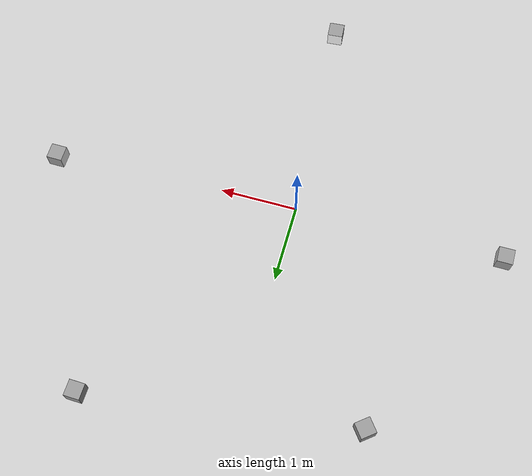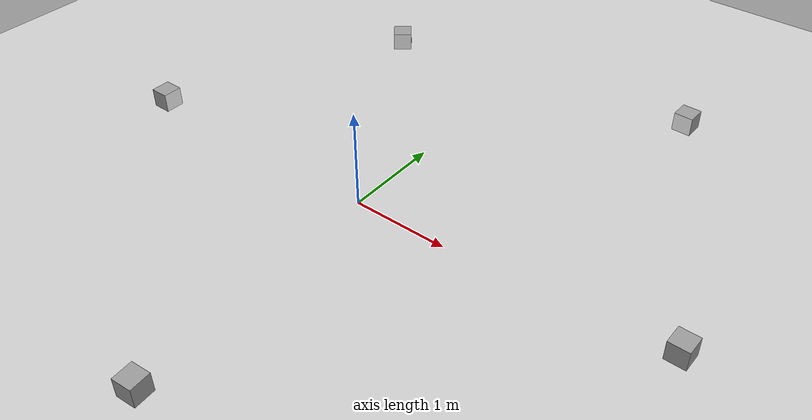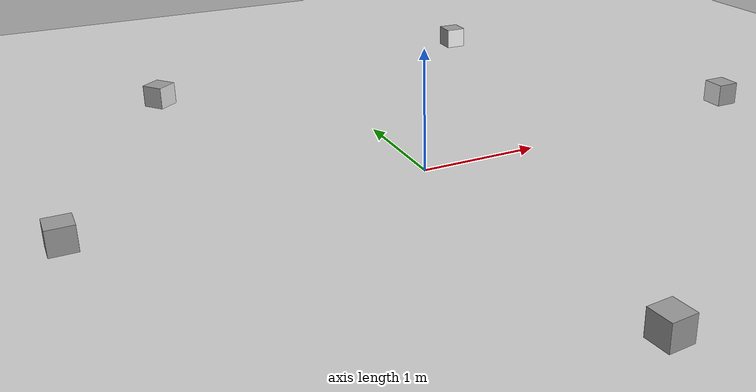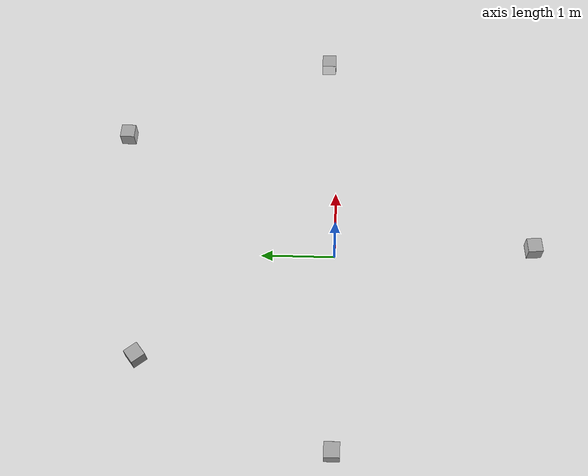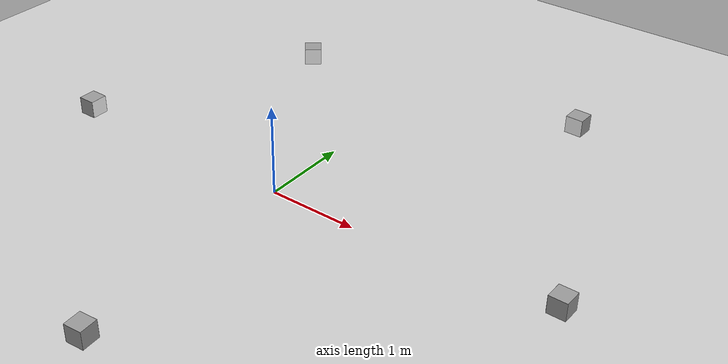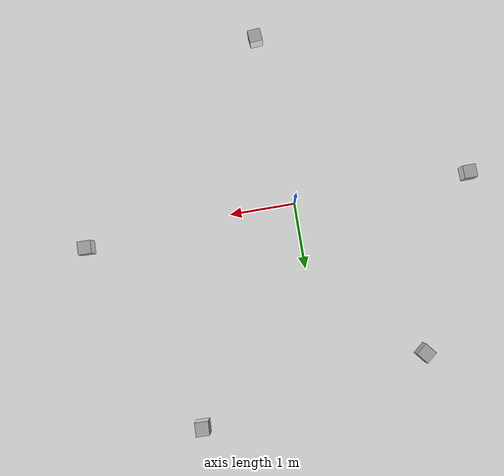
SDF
<sdf version="1.7">
 <world name="default">
  <light name="sun" type="directional">
   <pose>0 0 10 0 -0 0</pose>
   <diffuse>0.8 0.8 0.8 1</diffuse>
   <specular>0.2 0.2 0.2 1</specular>
   <attenuation>
    <range>1000</range>
    <constant>0.9</constant>
    <linear>0.01</linear>
    <quadratic>0.001</quadratic>
   </attenuation>
   <direction>-0.5 0.1 -0.9</direction>
   <spot><inner_angle>0</inner_angle><outer_angle>0</outer_angle><falloff>0</falloff></spot>
  </light>
  <model name="ground_plane">
   <static>1</static>
   <link name="link">
    <collision name="collision">
     <geometry><plane><normal>0 0 1</normal><size>100 100</size></plane></geometry>
     <surface>
      <contact><collide_bitmask>65535</collide_bitmask></contact>
      <friction><ode><mu>100</mu><mu2>50</mu2></ode></friction>
     </surface>
    </collision>
    <visual name="visual">
     <cast_shadows>0</cast_shadows>
     <geometry><plane><normal>0 0 1</normal><size>100 100</size></plane></geometry>
     <material>
      <script><uri>file://media/materials/scripts/gazebo.material</uri><name>Gazebo/Grey</name></script>
     </material>
    </visual>
   </link>
  </model>
  <gravity>0 0 -9.8</gravity>
  <magnetic_field>6e-06 2.3e-05 -4.2e-05</magnetic_field>
  <atmosphere type="adiabatic"/>
  <physics type="ode">
   <max_step_size>0.001</max_step_size>
   <real_time_factor>1</real_time_factor>
   <real_time_update_rate>1000</real_time_update_rate>
  </physics>
  <scene><ambient>0.4 0.4 0.4 1</ambient><background>0.7 0.7 0.7 1</background><shadows>1</shadows></scene>
  <spherical_coordinates>
   <surface_model>EARTH_WGS84</surface_model>
   <latitude_deg>0</latitude_deg>
   <longitude_deg>0</longitude_deg>
   <elevation>0</elevation>
   <heading_deg>0</heading_deg>
  </spherical_coordinates>
  <model name="marker37_box">
   <link name="marker">
    <inertial>
     <mass>0.1</mass>
     <inertia><ixx>0</ixx><ixy>0</ixy><ixz>0</ixz><iyy>0</iyy><iyz>0</iyz><izz>0</izz></inertia>
    </inertial>
    <self_collide>1</self_collide>
    <pose>-0.76428 -0.101106 0.120004 -0.015494 1.56996 -0.015507</pose>
    <visual name="visual">
     <geometry><box><size>0.2 0.2 0.001</size></box></geometry>
     <material>
      <script>
       <uri>model://marker37/material/scripts</uri>
       <uri>model://marker37/material/textures</uri>
       <name>Aruco/marker37</name>
      </script>
      <shader type="pixel"><normal_map>__default__</normal_map></shader>
      <emissive>0 0 0 1</emissive>
      <ambient>1 1 1 1</ambient>
      <diffuse>1 1 1 1</diffuse>
      <specular>0 0 0 1</specular>
     </material>
    </visual>
    <collision name="collision">
     <geometry><box><size>0.2 0.2 0.02</size></box></geometry>
     <surface>
      <friction>
       <ode><mu>1</mu><mu2>1</mu2><fdir1>0 0 0</fdir1><slip1>0</slip1><slip2>0</slip2></ode>
       <torsional>
        <coefficient>1</coefficient>
        <patch_radius>0</patch_radius>
        <surface_radius>0</surface_radius>
        <use_patch_radius>1</use_patch_radius>
        <ode><slip>0</slip></ode>
       </torsional>
      </friction>
      <bounce><restitution_coefficient>0</restitution_coefficient><threshold>1e+06</threshold></bounce>
      <contact>
       <collide_without_contact>0</collide_without_contact>
       <collide_without_contact_bitmask>1</collide_without_contact_bitmask>
       <collide_bitmask>1</collide_bitmask>
       <ode>
        <soft_cfm>0</soft_cfm>
        <soft_erp>0.2</soft_erp>
        <kp>1e+13</kp>
        <kd>1</kd>
        <max_vel>0.01</max_vel>
        <min_depth>0</min_depth>
       </ode>
       <bullet>
        <split_impulse>1</split_impulse>
        <split_impulse_penetration_threshold>-0.01</split_impulse_penetration_threshold>
        <soft_cfm>0</soft_cfm>
        <soft_erp>0.2</soft_erp>
        <kp>1e+13</kp>
        <kd>1</kd>
       </bullet>
      </contact>
     </surface>
    </collision>
   </link>
   <link name="link_1">
    <inertial>
     <mass>1</mass>
     <inertia>
      <ixx>0.166667</ixx>
      <ixy>0</ixy>
      <ixz>0</ixz>
      <iyy>0.166667</iyy>
      <iyz>0</iyz>
      <izz>0.166667</izz>
     </inertia>
    </inertial>
    <pose>-0.86428 -0.101106 0.12 -1.3e-05 -4.2e-05 -0</pose>
    <visual name="visual">
     <geometry><box><size>0.2 0.2 0.2</size></box></geometry>
     <material>
      <lighting>1</lighting>
      <script><uri>file://media/materials/scripts/gazebo.material</uri><name>Gazebo/Grey</name></script>
      <shader type="pixel"><normal_map>__default__</normal_map></shader>
      <emissive>0 0 0 1</emissive>
      <ambient>0.3 0.3 0.3 1</ambient>
      <diffuse>0.7 0.7 0.7 1</diffuse>
      <specular>0.01 0.01 0.01 1</specular>
     </material>
    </visual>
    <collision name="collision">
     <geometry><box><size>0.2 0.2 0.2</size></box></geometry>
     <surface>
      <friction>
       <ode><mu>1</mu><mu2>1</mu2><fdir1>0 0 0</fdir1><slip1>0</slip1><slip2>0</slip2></ode>
       <torsional>
        <coefficient>1</coefficient>
        <patch_radius>0</patch_radius>
        <surface_radius>0</surface_radius>
        <use_patch_radius>1</use_patch_radius>
        <ode><slip>0</slip></ode>
       </torsional>
      </friction>
      <bounce><restitution_coefficient>0</restitution_coefficient><threshold>1e+06</threshold></bounce>
      <contact>
       <collide_without_contact>0</collide_without_contact>
       <collide_without_contact_bitmask>1</collide_without_contact_bitmask>
       <collide_bitmask>1</collide_bitmask>
       <ode>
        <soft_cfm>0</soft_cfm>
        <soft_erp>0.2</soft_erp>
        <kp>1e+13</kp>
        <kd>1</kd>
        <max_vel>0.01</max_vel>
        <min_depth>0</min_depth>
       </ode>
       <bullet>
        <split_impulse>1</split_impulse>
        <split_impulse_penetration_threshold>-0.01</split_impulse_penetration_threshold>
        <soft_cfm>0</soft_cfm>
        <soft_erp>0.2</soft_erp>
        <kp>1e+13</kp>
        <kd>1</kd>
       </bullet>
      </contact>
     </surface>
    </collision>
   </link>
   <joint name="link_1_JOINT_3" type="fixed">
    <parent>link_1</parent>
    <child>marker</child>
    <physics>
     <ode><limit><cfm>0</cfm><erp>0.2</erp></limit><suspension><cfm>0</cfm><erp>0.2</erp></suspension></ode>
    </physics>
   </joint>
   <static>0</static>
   <pose>-1.84004 0.079703 -0.020009 8e-06 1.8e-05 0.000133</pose>
  </model>
  <model name="marker24_box">
   <link name="marker">
    <inertial>
     <mass>0.1</mass>
     <inertia><ixx>0</ixx><ixy>0</ixy><ixz>0</ixz><iyy>0</iyy><iyz>0</iyz><izz>0</izz></inertia>
    </inertial>
    <self_collide>1</self_collide>
    <pose>-0.76428 -0.101106 0.120004 -0.015494 1.56996 -0.015507</pose>
    <visual name="visual">
     <geometry><box><size>0.2 0.2 0.001</size></box></geometry>
     <material>
      <script>
       <uri>model://marker24/material/scripts</uri>
       <uri>model://marker24/material/textures</uri>
       <name>Aruco/marker24</name>
      </script>
      <shader type="pixel"><normal_map>__default__</normal_map></shader>
      <emissive>0 0 0 1</emissive>
      <ambient>1 1 1 1</ambient>
      <diffuse>1 1 1 1</diffuse>
      <specular>0 0 0 1</specular>
     </material>
    </visual>
    <collision name="collision">
     <geometry><box><size>0.2 0.2 0.02</size></box></geometry>
     <surface>
      <friction>
       <ode><mu>1</mu><mu2>1</mu2><fdir1>0 0 0</fdir1><slip1>0</slip1><slip2>0</slip2></ode>
       <torsional>
        <coefficient>1</coefficient>
        <patch_radius>0</patch_radius>
        <surface_radius>0</surface_radius>
        <use_patch_radius>1</use_patch_radius>
        <ode><slip>0</slip></ode>
       </torsional>
      </friction>
      <bounce><restitution_coefficient>0</restitution_coefficient><threshold>1e+06</threshold></bounce>
      <contact>
       <collide_without_contact>0</collide_without_contact>
       <collide_without_contact_bitmask>1</collide_without_contact_bitmask>
       <collide_bitmask>1</collide_bitmask>
       <ode>
        <soft_cfm>0</soft_cfm>
        <soft_erp>0.2</soft_erp>
        <kp>1e+13</kp>
        <kd>1</kd>
        <max_vel>0.01</max_vel>
        <min_depth>0</min_depth>
       </ode>
       <bullet>
        <split_impulse>1</split_impulse>
        <split_impulse_penetration_threshold>-0.01</split_impulse_penetration_threshold>
        <soft_cfm>0</soft_cfm>
        <soft_erp>0.2</soft_erp>
        <kp>1e+13</kp>
        <kd>1</kd>
       </bullet>
      </contact>
     </surface>
    </collision>
   </link>
   <link name="link_1">
    <inertial>
     <mass>1</mass>
     <inertia>
      <ixx>0.166667</ixx>
      <ixy>0</ixy>
      <ixz>0</ixz>
      <iyy>0.166667</iyy>
      <iyz>0</iyz>
      <izz>0.166667</izz>
     </inertia>
    </inertial>
    <pose>-0.86428 -0.101106 0.12 -1.3e-05 -4.2e-05 -0</pose>
    <visual name="visual">
     <geometry><box><size>0.2 0.2 0.2</size></box></geometry>
     <material>
      <lighting>1</lighting>
      <script><uri>file://media/materials/scripts/gazebo.material</uri><name>Gazebo/Grey</name></script>
      <shader type="pixel"><normal_map>__default__</normal_map></shader>
      <emissive>0 0 0 1</emissive>
      <ambient>0.3 0.3 0.3 1</ambient>
      <diffuse>0.7 0.7 0.7 1</diffuse>
      <specular>0.01 0.01 0.01 1</specular>
     </material>
    </visual>
    <collision name="collision">
     <geometry><box><size>0.2 0.2 0.2</size></box></geometry>
     <surface>
      <friction>
       <ode><mu>1</mu><mu2>1</mu2><fdir1>0 0 0</fdir1><slip1>0</slip1><slip2>0</slip2></ode>
       <torsional>
        <coefficient>1</coefficient>
        <patch_radius>0</patch_radius>
        <surface_radius>0</surface_radius>
        <use_patch_radius>1</use_patch_radius>
        <ode><slip>0</slip></ode>
       </torsional>
      </friction>
      <bounce><restitution_coefficient>0</restitution_coefficient><threshold>1e+06</threshold></bounce>
      <contact>
       <collide_without_contact>0</collide_without_contact>
       <collide_without_contact_bitmask>1</collide_without_contact_bitmask>
       <collide_bitmask>1</collide_bitmask>
       <ode>
        <soft_cfm>0</soft_cfm>
        <soft_erp>0.2</soft_erp>
        <kp>1e+13</kp>
        <kd>1</kd>
        <max_vel>0.01</max_vel>
        <min_depth>0</min_depth>
       </ode>
       <bullet>
        <split_impulse>1</split_impulse>
        <split_impulse_penetration_threshold>-0.01</split_impulse_penetration_threshold>
        <soft_cfm>0</soft_cfm>
        <soft_erp>0.2</soft_erp>
        <kp>1e+13</kp>
        <kd>1</kd>
       </bullet>
      </contact>
     </surface>
    </collision>
   </link>
   <joint name="link_1_JOINT_3" type="fixed">
    <parent>link_1</parent>
    <child>marker</child>
    <physics>
     <ode><limit><cfm>0</cfm><erp>0.2</erp></limit><suspension><cfm>0</cfm><erp>0.2</erp></suspension></ode>
    </physics>
   </joint>
   <static>0</static>
   <pose>-0.006922 -1.84775 -0.020009 1.4e-05 1.9e-05 1.64861</pose>
  </model>
  <model name="marker27_box">
   <link name="marker">
    <inertial>
     <mass>0.1</mass>
     <inertia><ixx>0</ixx><ixy>0</ixy><ixz>0</ixz><iyy>0</iyy><iyz>0</iyz><izz>0</izz></inertia>
    </inertial>
    <self_collide>1</self_collide>
    <pose>-0.76428 -0.101106 0.120004 -0.015494 1.56996 -0.015507</pose>
    <visual name="visual">
     <geometry><box><size>0.2 0.2 0.001</size></box></geometry>
     <material>
      <script>
       <uri>model://marker27/material/scripts</uri>
       <uri>model://marker27/material/textures</uri>
       <name>Aruco/marker27</name>
      </script>
      <shader type="pixel"><normal_map>__default__</normal_map></shader>
      <emissive>0 0 0 1</emissive>
      <ambient>1 1 1 1</ambient>
      <diffuse>1 1 1 1</diffuse>
      <specular>0 0 0 1</specular>
     </material>
    </visual>
    <collision name="collision">
     <geometry><box><size>0.2 0.2 0.02</size></box></geometry>
     <surface>
      <friction>
       <ode><mu>1</mu><mu2>1</mu2><fdir1>0 0 0</fdir1><slip1>0</slip1><slip2>0</slip2></ode>
       <torsional>
        <coefficient>1</coefficient>
        <patch_radius>0</patch_radius>
        <surface_radius>0</surface_radius>
        <use_patch_radius>1</use_patch_radius>
        <ode><slip>0</slip></ode>
       </torsional>
      </friction>
      <bounce><restitution_coefficient>0</restitution_coefficient><threshold>1e+06</threshold></bounce>
      <contact>
       <collide_without_contact>0</collide_without_contact>
       <collide_without_contact_bitmask>1</collide_without_contact_bitmask>
       <collide_bitmask>1</collide_bitmask>
       <ode>
        <soft_cfm>0</soft_cfm>
        <soft_erp>0.2</soft_erp>
        <kp>1e+13</kp>
        <kd>1</kd>
        <max_vel>0.01</max_vel>
        <min_depth>0</min_depth>
       </ode>
       <bullet>
        <split_impulse>1</split_impulse>
        <split_impulse_penetration_threshold>-0.01</split_impulse_penetration_threshold>
        <soft_cfm>0</soft_cfm>
        <soft_erp>0.2</soft_erp>
        <kp>1e+13</kp>
        <kd>1</kd>
       </bullet>
      </contact>
     </surface>
    </collision>
   </link>
   <link name="link_1">
    <inertial>
     <mass>1</mass>
     <inertia>
      <ixx>0.166667</ixx>
      <ixy>0</ixy>
      <ixz>0</ixz>
      <iyy>0.166667</iyy>
      <iyz>0</iyz>
      <izz>0.166667</izz>
     </inertia>
    </inertial>
    <pose>-0.86428 -0.101106 0.12 -1.3e-05 -4.2e-05 -0</pose>
    <visual name="visual">
     <geometry><box><size>0.2 0.2 0.2</size></box></geometry>
     <material>
      <lighting>1</lighting>
      <script><uri>file://media/materials/scripts/gazebo.material</uri><name>Gazebo/Grey</name></script>
      <shader type="pixel"><normal_map>__default__</normal_map></shader>
      <emissive>0 0 0 1</emissive>
      <ambient>0.3 0.3 0.3 1</ambient>
      <diffuse>0.7 0.7 0.7 1</diffuse>
      <specular>0.01 0.01 0.01 1</specular>
     </material>
    </visual>
    <collision name="collision">
     <geometry><box><size>0.2 0.2 0.2</size></box></geometry>
     <surface>
      <friction>
       <ode><mu>1</mu><mu2>1</mu2><fdir1>0 0 0</fdir1><slip1>0</slip1><slip2>0</slip2></ode>
       <torsional>
        <coefficient>1</coefficient>
        <patch_radius>0</patch_radius>
        <surface_radius>0</surface_radius>
        <use_patch_radius>1</use_patch_radius>
        <ode><slip>0</slip></ode>
       </torsional>
      </friction>
      <bounce><restitution_coefficient>0</restitution_coefficient><threshold>1e+06</threshold></bounce>
      <contact>
       <collide_without_contact>0</collide_without_contact>
       <collide_without_contact_bitmask>1</collide_without_contact_bitmask>
       <collide_bitmask>1</collide_bitmask>
       <ode>
        <soft_cfm>0</soft_cfm>
        <soft_erp>0.2</soft_erp>
        <kp>1e+13</kp>
        <kd>1</kd>
        <max_vel>0.01</max_vel>
        <min_depth>0</min_depth>
       </ode>
       <bullet>
        <split_impulse>1</split_impulse>
        <split_impulse_penetration_threshold>-0.01</split_impulse_penetration_threshold>
        <soft_cfm>0</soft_cfm>
        <soft_erp>0.2</soft_erp>
        <kp>1e+13</kp>
        <kd>1</kd>
       </bullet>
      </contact>
     </surface>
    </collision>
   </link>
   <joint name="link_1_JOINT_3" type="fixed">
    <parent>link_1</parent>
    <child>marker</child>
    <physics>
     <ode><limit><cfm>0</cfm><erp>0.2</erp></limit><suspension><cfm>0</cfm><erp>0.2</erp></suspension></ode>
    </physics>
   </joint>
   <static>0</static>
   <pose>2.34391 0.052849 -0.020008 9e-06 1.8e-05 3.13215</pose>
  </model>
  <model name="marker39_box">
   <link name="marker">
    <inertial>
     <mass>0.1</mass>
     <inertia><ixx>0</ixx><ixy>0</ixy><ixz>0</ixz><iyy>0</iyy><iyz>0</iyz><izz>0</izz></inertia>
    </inertial>
    <self_collide>1</self_collide>
    <pose>-0.76428 -0.101106 0.120004 -0.015494 1.56996 -0.015507</pose>
    <visual name="visual">
     <geometry><box><size>0.2 0.2 0.001</size></box></geometry>
     <material>
      <script>
       <uri>model://marker39/material/scripts</uri>
       <uri>model://marker39/material/textures</uri>
       <name>Aruco/marker39</name>
      </script>
      <shader type="pixel"><normal_map>__default__</normal_map></shader>
      <emissive>0 0 0 1</emissive>
      <ambient>1 1 1 1</ambient>
      <diffuse>1 1 1 1</diffuse>
      <specular>0 0 0 1</specular>
     </material>
    </visual>
    <collision name="collision">
     <geometry><box><size>0.2 0.2 0.02</size></box></geometry>
     <surface>
      <friction>
       <ode><mu>1</mu><mu2>1</mu2><fdir1>0 0 0</fdir1><slip1>0</slip1><slip2>0</slip2></ode>
       <torsional>
        <coefficient>1</coefficient>
        <patch_radius>0</patch_radius>
        <surface_radius>0</surface_radius>
        <use_patch_radius>1</use_patch_radius>
        <ode><slip>0</slip></ode>
       </torsional>
      </friction>
      <bounce><restitution_coefficient>0</restitution_coefficient><threshold>1e+06</threshold></bounce>
      <contact>
       <collide_without_contact>0</collide_without_contact>
       <collide_without_contact_bitmask>1</collide_without_contact_bitmask>
       <collide_bitmask>1</collide_bitmask>
       <ode>
        <soft_cfm>0</soft_cfm>
        <soft_erp>0.2</soft_erp>
        <kp>1e+13</kp>
        <kd>1</kd>
        <max_vel>0.01</max_vel>
        <min_depth>0</min_depth>
       </ode>
       <bullet>
        <split_impulse>1</split_impulse>
        <split_impulse_penetration_threshold>-0.01</split_impulse_penetration_threshold>
        <soft_cfm>0</soft_cfm>
        <soft_erp>0.2</soft_erp>
        <kp>1e+13</kp>
        <kd>1</kd>
       </bullet>
      </contact>
     </surface>
    </collision>
   </link>
   <link name="link_1">
    <inertial>
     <mass>1</mass>
     <inertia>
      <ixx>0.166667</ixx>
      <ixy>0</ixy>
      <ixz>0</ixz>
      <iyy>0.166667</iyy>
      <iyz>0</iyz>
      <izz>0.166667</izz>
     </inertia>
    </inertial>
    <pose>-0.86428 -0.101106 0.12 -1.3e-05 -4.2e-05 -0</pose>
    <visual name="visual">
     <geometry><box><size>0.2 0.2 0.2</size></box></geometry>
     <material>
      <lighting>1</lighting>
      <script><uri>file://media/materials/scripts/gazebo.material</uri><name>Gazebo/Grey</name></script>
      <shader type="pixel"><normal_map>__default__</normal_map></shader>
      <emissive>0 0 0 1</emissive>
      <ambient>0.3 0.3 0.3 1</ambient>
      <diffuse>0.7 0.7 0.7 1</diffuse>
      <specular>0.01 0.01 0.01 1</specular>
     </material>
    </visual>
    <collision name="collision">
     <geometry><box><size>0.2 0.2 0.2</size></box></geometry>
     <surface>
      <friction>
       <ode><mu>1</mu><mu2>1</mu2><fdir1>0 0 0</fdir1><slip1>0</slip1><slip2>0</slip2></ode>
       <torsional>
        <coefficient>1</coefficient>
        <patch_radius>0</patch_radius>
        <surface_radius>0</surface_radius>
        <use_patch_radius>1</use_patch_radius>
        <ode><slip>0</slip></ode>
       </torsional>
      </friction>
      <bounce><restitution_coefficient>0</restitution_coefficient><threshold>1e+06</threshold></bounce>
      <contact>
       <collide_without_contact>0</collide_without_contact>
       <collide_without_contact_bitmask>1</collide_without_contact_bitmask>
       <collide_bitmask>1</collide_bitmask>
       <ode>
        <soft_cfm>0</soft_cfm>
        <soft_erp>0.2</soft_erp>
        <kp>1e+13</kp>
        <kd>1</kd>
        <max_vel>0.01</max_vel>
        <min_depth>0</min_depth>
       </ode>
       <bullet>
        <split_impulse>1</split_impulse>
        <split_impulse_penetration_threshold>-0.01</split_impulse_penetration_threshold>
        <soft_cfm>0</soft_cfm>
        <soft_erp>0.2</soft_erp>
        <kp>1e+13</kp>
        <kd>1</kd>
       </bullet>
      </contact>
     </surface>
    </collision>
   </link>
   <joint name="link_1_JOINT_3" type="fixed">
    <parent>link_1</parent>
    <child>marker</child>
    <physics>
     <ode><limit><cfm>0</cfm><erp>0.2</erp></limit><suspension><cfm>0</cfm><erp>0.2</erp></suspension></ode>
    </physics>
   </joint>
   <static>0</static>
   <pose>1.94781 2.15183 -0.020008 -1e-06 1.8e-05 -1.5999</pose>
  </model>
  <model name="marker18_box">
   <link name="marker">
    <inertial>
     <mass>0.1</mass>
     <inertia><ixx>0</ixx><ixy>0</ixy><ixz>0</ixz><iyy>0</iyy><iyz>0</iyz><izz>0</izz></inertia>
    </inertial>
    <self_collide>1</self_collide>
    <pose>-0.76428 -0.101106 0.120004 -0.015494 1.56996 -0.015507</pose>
    <visual name="visual">
     <geometry><box><size>0.2 0.2 0.001</size></box></geometry>
     <material>
      <script>
       <uri>model://marker18/material/scripts</uri>
       <uri>model://marker18/material/textures</uri>
       <name>Aruco/marker18</name>
      </script>
      <shader type="pixel"><normal_map>__default__</normal_map></shader>
      <emissive>0 0 0 1</emissive>
      <ambient>1 1 1 1</ambient>
      <diffuse>1 1 1 1</diffuse>
      <specular>0 0 0 1</specular>
     </material>
    </visual>
    <collision name="collision">
     <geometry><box><size>0.2 0.2 0.02</size></box></geometry>
     <surface>
      <friction>
       <ode><mu>1</mu><mu2>1</mu2><fdir1>0 0 0</fdir1><slip1>0</slip1><slip2>0</slip2></ode>
       <torsional>
        <coefficient>1</coefficient>
        <patch_radius>0</patch_radius>
        <surface_radius>0</surface_radius>
        <use_patch_radius>1</use_patch_radius>
        <ode><slip>0</slip></ode>
       </torsional>
      </friction>
      <bounce><restitution_coefficient>0</restitution_coefficient><threshold>1e+06</threshold></bounce>
      <contact>
       <collide_without_contact>0</collide_without_contact>
       <collide_without_contact_bitmask>1</collide_without_contact_bitmask>
       <collide_bitmask>1</collide_bitmask>
       <ode>
        <soft_cfm>0</soft_cfm>
        <soft_erp>0.2</soft_erp>
        <kp>1e+13</kp>
        <kd>1</kd>
        <max_vel>0.01</max_vel>
        <min_depth>0</min_depth>
       </ode>
       <bullet>
        <split_impulse>1</split_impulse>
        <split_impulse_penetration_threshold>-0.01</split_impulse_penetration_threshold>
        <soft_cfm>0</soft_cfm>
        <soft_erp>0.2</soft_erp>
        <kp>1e+13</kp>
        <kd>1</kd>
       </bullet>
      </contact>
     </surface>
    </collision>
   </link>
   <link name="link_1">
    <inertial>
     <mass>1</mass>
     <inertia>
      <ixx>0.166667</ixx>
      <ixy>0</ixy>
      <ixz>0</ixz>
      <iyy>0.166667</iyy>
      <iyz>0</iyz>
      <izz>0.166667</izz>
     </inertia>
    </inertial>
    <pose>-0.86428 -0.101106 0.12 -1.3e-05 -4.2e-05 -0</pose>
    <visual name="visual">
     <geometry><box><size>0.2 0.2 0.2</size></box></geometry>
     <material>
      <lighting>1</lighting>
      <script><uri>file://media/materials/scripts/gazebo.material</uri><name>Gazebo/Grey</name></script>
      <shader type="pixel"><normal_map>__default__</normal_map></shader>
      <emissive>0 0 0 1</emissive>
      <ambient>0.3 0.3 0.3 1</ambient>
      <diffuse>0.7 0.7 0.7 1</diffuse>
      <specular>0.01 0.01 0.01 1</specular>
     </material>
    </visual>
    <collision name="collision">
     <geometry><box><size>0.2 0.2 0.2</size></box></geometry>
     <surface>
      <friction>
       <ode><mu>1</mu><mu2>1</mu2><fdir1>0 0 0</fdir1><slip1>0</slip1><slip2>0</slip2></ode>
       <torsional>
        <coefficient>1</coefficient>
        <patch_radius>0</patch_radius>
        <surface_radius>0</surface_radius>
        <use_patch_radius>1</use_patch_radius>
        <ode><slip>0</slip></ode>
       </torsional>
      </friction>
      <bounce><restitution_coefficient>0</restitution_coefficient><threshold>1e+06</threshold></bounce>
      <contact>
       <collide_without_contact>0</collide_without_contact>
       <collide_without_contact_bitmask>1</collide_without_contact_bitmask>
       <collide_bitmask>1</collide_bitmask>
       <ode>
        <soft_cfm>0</soft_cfm>
        <soft_erp>0.2</soft_erp>
        <kp>1e+13</kp>
        <kd>1</kd>
        <max_vel>0.01</max_vel>
        <min_depth>0</min_depth>
       </ode>
       <bullet>
        <split_impulse>1</split_impulse>
        <split_impulse_penetration_threshold>-0.01</split_impulse_penetration_threshold>
        <soft_cfm>0</soft_cfm>
        <soft_erp>0.2</soft_erp>
        <kp>1e+13</kp>
        <kd>1</kd>
       </bullet>
      </contact>
     </surface>
    </collision>
   </link>
   <joint name="link_1_JOINT_3" type="fixed">
    <parent>link_1</parent>
    <child>marker</child>
    <physics>
     <ode><limit><cfm>0</cfm><erp>0.2</erp></limit><suspension><cfm>0</cfm><erp>0.2</erp></suspension></ode>
    </physics>
   </joint>
   <static>0</static>
   <pose>-0.901777 1.9085 -0.020018 1.7e-05 1.8e-05 -0.899661</pose>
  </model>
 </world>
</sdf>
